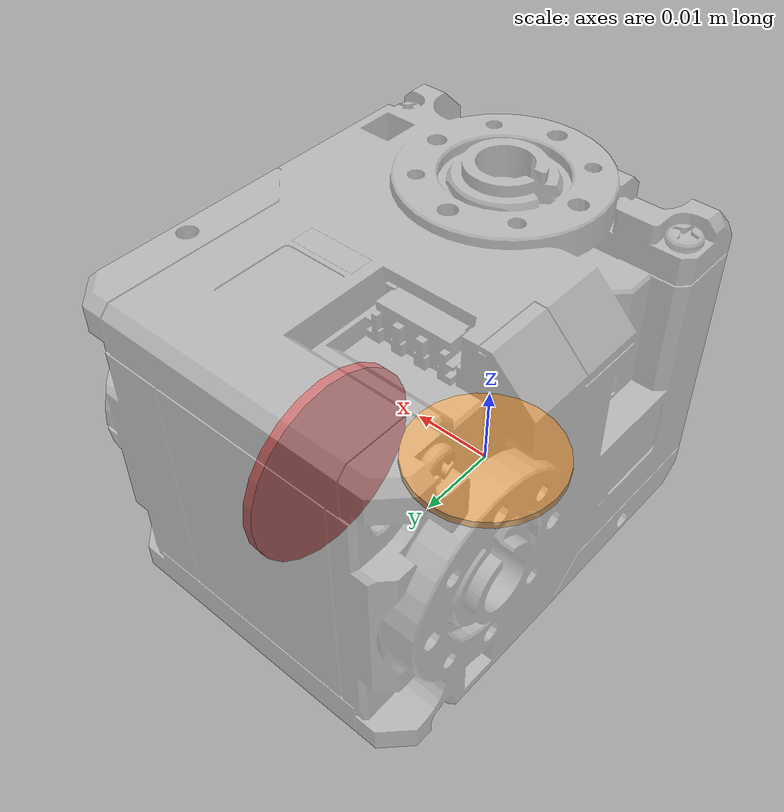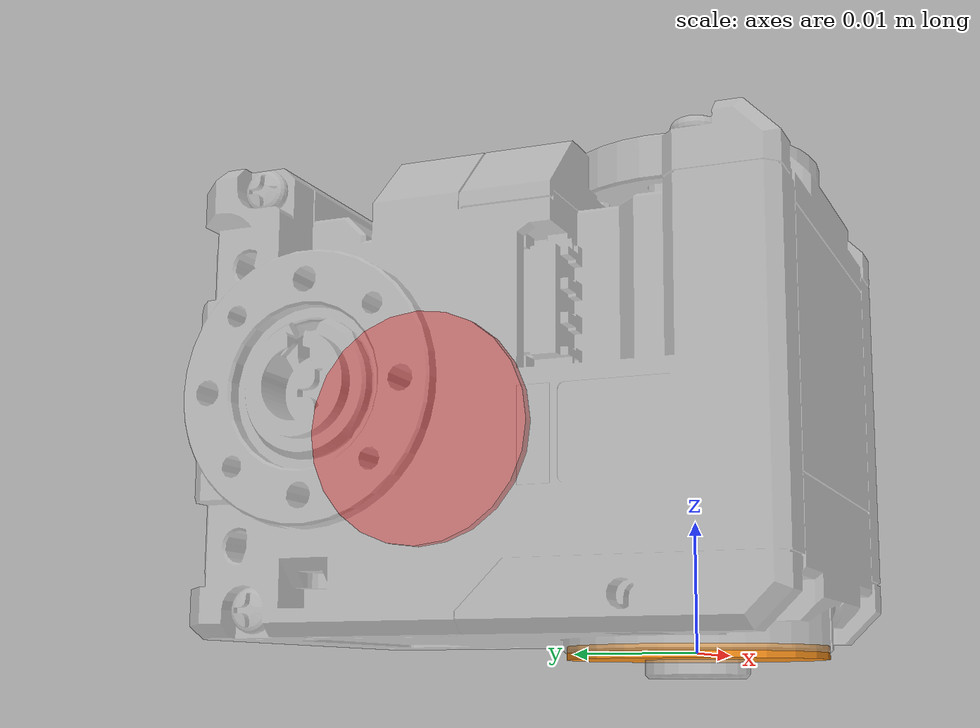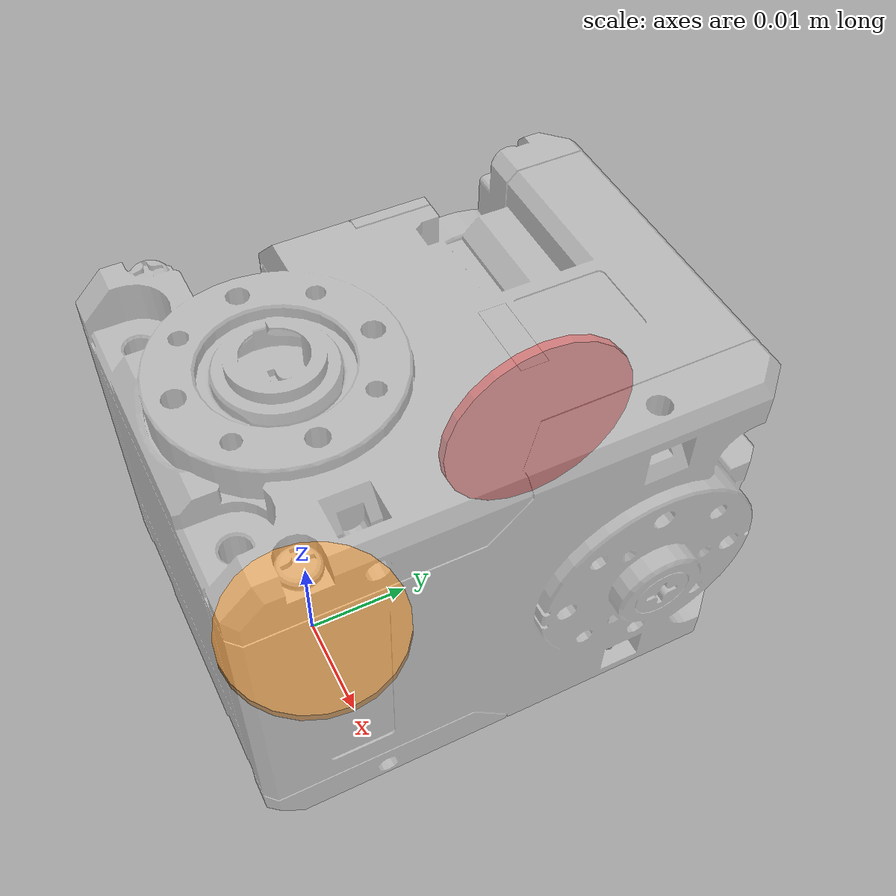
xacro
<?xml version="1.0"?>
<robot name="my_robo" xmlns:xacro="http://ros.org/wiki/xacro">\
	<xacro:include filename="$(find turtlebot3_description)/urdf/common_properties.xacro"/>
	<xacro:include filename="$(find turtlebot3_description)/urdf/dynamixel/_2XL430.urdf.xacro"/>

	<link name="base">
		<visual>
			<origin xyz="0 0 0" rpy="0 0 0"/>
			<geometry>
				<cylinder length="0.001" radius="0.01"/>
			</geometry>
			<material name="orange"/>
		</visual>
	</link>

	<xacro:motor_2XL430 parent="base" center_parent="false" child="hone" center_child="true" />

	<link name="hone">
		<visual>
			<origin xyz="0 0 0" rpy="0 0 0"/>
			<geometry>
				<cylinder length="0.001" radius="0.01"/>
			</geometry>
			<material name="red"/>
		</visual>
	</link>

	<gazebo reference="base">
		<material>Gazebo/Orange</material>
	</gazebo>

	<gazebo reference="hone">
		<material>Gazebo/Red</material>
	</gazebo>

</robot>

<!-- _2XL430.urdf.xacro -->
<!-- あとでdynamixel descriptionを作ってそこにれる -->
<robot name=" dynamixel-2XL430" xmlns:xacro="http://ros.org/wiki/xacro">\
	<xacro:property name="L_x_yaw" value="${ 0/1000}" />
	<xacro:property name="L_y_yaw" value="${12/1000}" />
	<xacro:property name="L_z_yaw" value="${19/1000}" />
	<xacro:property name="L_x_pitch" value="${ L_z_yaw}" />
	<xacro:property name="L_y_pitch" value="${-L_y_yaw}" />
	<xacro:property name="L_z_pitch" value="${ L_x_yaw}" />
	<xacro:property name="mass" value="${98.2/1000}" />
	<xacro:property name="path_to_stl" value="meshes/dynamixel/2XL430-W250-T.stl" />

	<xacro:macro name="motor_2XL430" params="parent child center_parent:=false center_child:=false">
		<joint name="2XL430_yaw_joint_" type="fixed">
			<parent link="${parent}"/>
			<child link="dynx_2XL430_hone_yaw"/>
			<xacro:if value="${center_parent}">
				<origin xyz="0 0 ${-L_z_yaw}" rpy="0 0 0"/>
			</xacro:if>
			<xacro:unless value="${center_parent}">
				<origin xyz="0 0 0" rpy="0 0 0"/>
			</xacro:unless>
		</joint>

		<link name="dynx_2XL430_hone_yaw" />

		<joint name="${parent}_joint" type="continuous">
			<parent link="dynx_2XL430_hone_yaw"/>
			<child link="dynx_2XL430"/>
			<origin xyz="${L_x_yaw} ${L_y_yaw} ${L_z_yaw}" rpy="${pi} 0 0"/>
			<!--6.3879[rad/sec]=61[rev/min], 1.5[Nm]-->
			<axis xyz="0 0 1"/>
			<dynamics damping="0.1"/>
			<limit velocity="6.3879" effort="1.5" />
		</joint>

		<link name="dynx_2XL430">
			<inertial>
				<origin xyz="0 0 0" rpy="0 0 0"/>
				<mass value="${mass}"/>
				<inertia ixx="0.1"  ixy="0"  ixz="0" iyy="0.1" iyz="0" izz="0.1" /> <!-- not correct todo-->
			</inertial>
			<visual>
				<origin xyz="0 0 0" rpy="0 0 0" />
				<geometry>
					<mesh filename="package://turtlebot3_description/${path_to_stl}" />
				</geometry>
				<material name="gray">
					<color rgba="0.8 0.8 0.8 0.5"/>
				</material>
			</visual>
			<collision>
				<origin xyz="0 0 0" rpy="0 0 0"/>
				<geometry>
					<box size="0.036 0.0465 0.036"/>
				</geometry>
			</collision>
		</link>

		<!--あとでgazebo.xacroに入れる-->
		<gazebo reference="dynx_2XL430">
			<mu1>0.1</mu1>
			<mu2>0.1</mu2>
			<kp>500000.0</kp>
			<kd>10.0</kd>
			<minDepth>0.001</minDepth>
			<maxVel>0.1</maxVel>
			<fdir1>1 0 0</fdir1>
			<material>Gazebo/Gray</material>
		</gazebo>

		<joint name="${child}_joint" type="continuous">
			<parent link="dynx_2XL430"/>
			<child link="dynx_2XL430_hone_pitch"/>
			<origin xyz="${L_x_pitch} ${L_y_pitch} ${L_z_pitch}" rpy="0 ${pi/2} 0"/>
			<!--6.3879[rad/sec]=61[rev/min], 1.5[Nm]-->
			<axis xyz="0 0 1"/>
			<dynamics damping="0.1"/>
			<limit velocity="6.3879" effort="1.5" />
		</joint>

		<link name="dynx_2XL430_hone_pitch" />

		<joint name="2XL430_pitch_joint_" type="fixed">
			<parent link="dynx_2XL430_hone_pitch"/>
			<child link="${child}"/>
			<xacro:if value="${center_child}">
				<origin xyz="0 0 ${-L_x_pitch}" rpy="0 0 0"/>
			</xacro:if>
			<xacro:unless value="${center_child}">
				<origin xyz="0 0 0" rpy="0 0 0"/>
			</xacro:unless>
		</joint>

	</xacro:macro>

</robot>
